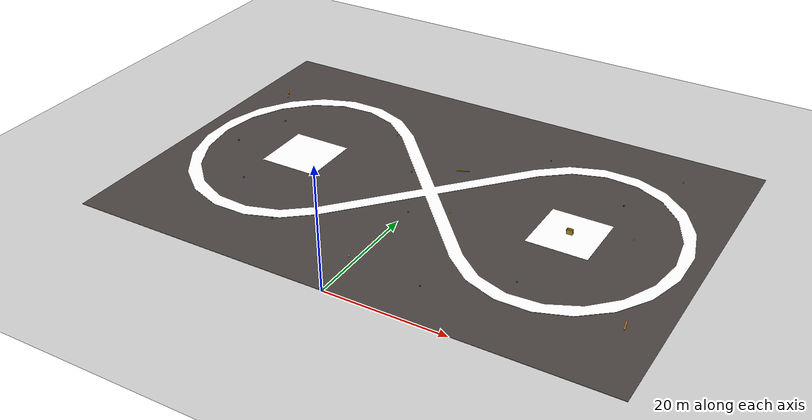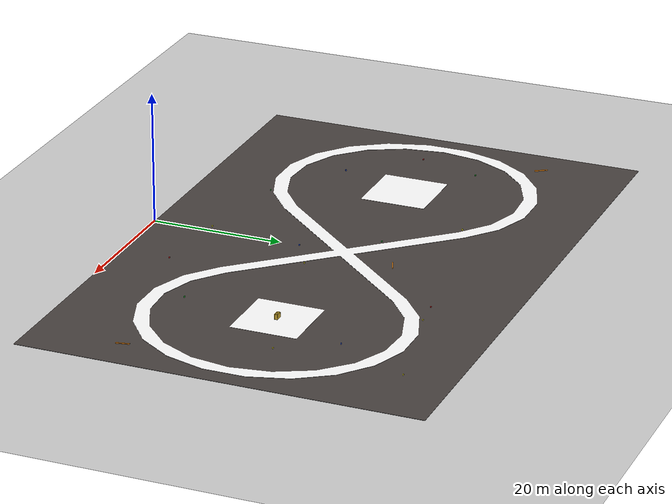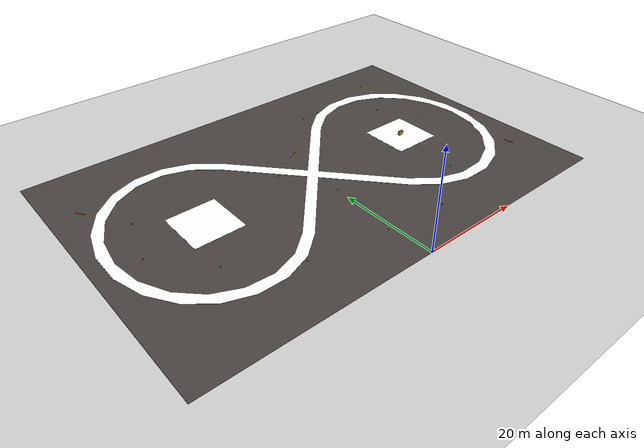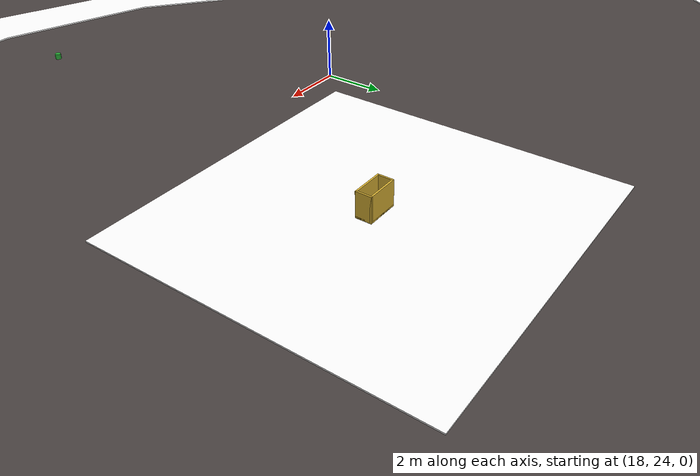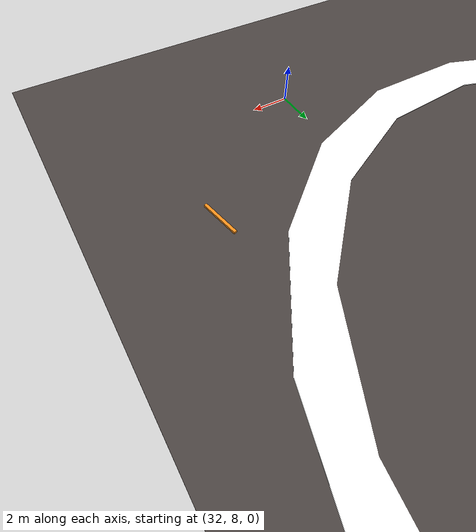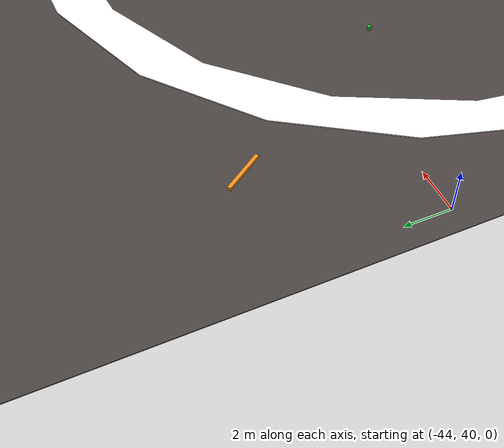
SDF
<?xml version="1.0" ?>
<sdf version="1.4">
	<world name="default">

		<!-- A global light source -->
		<include>
			<uri>model://sun</uri>
		</include>

		<!-- A ground plane -->
		<include>
			<uri>model://ground_plane</uri>
		</include>

		<!--Model Blender of Stage-->

		<model name="testbed_scene">
			<static>true</static>
            <pose>0 0 0 0 0 0.0</pose>
			<link name="test_scene">
				<visual name="visual">
					<geometry>
						<mesh><uri>model://stage.dae</uri></mesh>
					</geometry>
				</visual>
			</link>
		</model>

        <!-- Model of Static Objects -->
        <model name="static_object_1">
            <pose>22.52 15.2 0.05 0 0 0</pose>
            <include>
                <uri>model://green_object</uri>
            </include>
        </model>

        <model name="static_object_2">
            <pose>-33.77 37.7 0.05 0 0 0</pose>
            <include>
                <uri>model://green_object</uri>
            </include>
        </model>

        <model name="static_object_3">
            <pose>-16.82 11.22 0.05 0 0 0</pose>
            <include>
                <uri>model://green_object</uri>
            </include>
        </model>

        <model name="static_object_4">
            <pose>-5.61 33.71 0.05 0 0 0</pose>
            <include>
                <uri>model://green_object</uri>
            </include>
        </model>

        <model name="static_object_5">
            <pose>0.1 23.1 0.05 0 0 0</pose>
            <include>
                <uri>model://blue_object</uri>
            </include>
        </model>

        <model name="static_object_6">
            <pose>-28.18 18.78 0.05 0 0 0</pose>
            <include>
                <uri>model://blue_object</uri>
            </include>
        </model>

        <model name="static_object_7">
            <pose>28.13 41.23 0.05 0 0 0</pose>
            <include>
                <uri>model://blue_object</uri>
            </include>
        </model>

        <model name="static_object_8">
            <pose>-36.57 28.17 0.05 0 0 0</pose>
            <include>
                <uri>model://red_object</uri>
            </include>
        </model>

        <model name="static_object_9">
            <pose>11.26 7.6 0.05 0 0 0</pose>
            <include>
                <uri>model://red_object</uri>
            </include>
        </model>

        <model name="static_object_10">
            <pose>12.53 48.3 0.05 0 0 0</pose>
            <include>
                <uri>model://red_object</uri>
            </include>
        </model>

        <!-- BIG OBJECTS -->

        <model name="big_object_1">
            <pose>1.48 38.18 0.05 0 0 0.39270</pose>
            <include>
                <uri>model://orange_object</uri>
            </include>
        </model>

        <model name="big_object_2">
            <pose>39.30 13.70 0.05 0 0 1.76715</pose>
            <include>
                <uri>model://orange_object</uri>
            </include>
        </model>

        <model name="big_object_3">
            <pose>-39.35 46.25 0.1 0 0 2.15985</pose>
            <include>
                <uri>model://orange_object</uri>
            </include>
        </model>

         <!-- Model of Mobile Objects -->

        <model name="mobile_object_1">
            <pose>-1.24 8.7 0.05 0 0 0</pose>
            <include>
                <uri>model://yellow_object</uri>
            </include>
        </model>

        <model name="mobile_object_2">
            <pose>16.89 48.79 0.05 0 0 0</pose>
            <include>
                <uri>model://yellow_object</uri>
            </include>
        </model>

        <model name="mobile_object_3">
            <pose>5.64 26.24 0.05 0 0 0</pose>
            <include>
                <uri>model://yellow_object</uri>
            </include>
        </model>

        <model name="mobile_object_4">
            <pose>33.75 52.5 0.05 0 0 0</pose>
            <include>
                <uri>model://yellow_object</uri>
            </include>
        </model>

        <model name="mobile_object_5">
            <pose>32.9 33.19 0.05 0 0 0</pose>
            <include>
                <uri>model://yellow_object</uri>
            </include>
        </model>

        <model name="mobile_object_6">
            <pose>-14.0 43.0 0.05 0 0 0</pose>
            <include>
                <uri>model://yellow_object</uri>
            </include>
        </model>

        <!-- DROP BOX -->

        <model name="drop_box">
            <pose>24 30 0.05 0 0 1.571</pose>
            <include>
                <uri>model://dropping_box</uri>
            </include>
        </model>
	</world>
</sdf>

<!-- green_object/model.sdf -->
<sdf version="1.4">
<model name="green cylinder">
  <pose>0 0 0.08 0 0 0</pose>
    <link name="grab_here">
      <inertial>
        <mass>0.5</mass>
        <inertia>
          <ixx>0.083</ixx>
          <ixy>0.0</ixy>
          <ixz>0.0</ixz>
          <iyy>0.083</iyy>
          <iyz>0.0</iyz>
          <izz>0.083</izz>
        </inertia>
      </inertial>
      <collision name="collision">
        <geometry>
          <cylinder>
            <radius>0.10</radius>
            <length>0.2</length>
          </cylinder>
        </geometry>
      </collision>
      <visual name="visual">
        <geometry>
          <cylinder>
            <radius>0.10</radius>
            <length>0.2</length>
          </cylinder>
        </geometry>
        <material>
        	<script>
              <uri>file://media/materials/scripts/gazebo.material</uri>
              <name>Gazebo/Green</name>
            </script>
        </material>
      </visual>
    </link>
  </model>
</sdf>

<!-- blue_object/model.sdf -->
<sdf version="1.4">
<model name="blue cylinder">
  <pose>0 0 0.08 0 0 0</pose>
    <link name="grab_here">
      <inertial>
        <mass>0.5</mass>
        <inertia>
          <ixx>0.083</ixx>
          <ixy>0.0</ixy>
          <ixz>0.0</ixz>
          <iyy>0.083</iyy>
          <iyz>0.0</iyz>
          <izz>0.083</izz>
        </inertia>
      </inertial>
      <collision name="collision">
        <geometry>
          <cylinder>
            <radius>0.10</radius>
            <length>0.2</length>
          </cylinder>
        </geometry>
      </collision>
      <visual name="visual">
        <geometry>
          <cylinder>
            <radius>0.10</radius>
            <length>0.2</length>
          </cylinder>
        </geometry>
        <material>
        	<script>
              <uri>file://media/materials/scripts/gazebo.material</uri>
              <name>Gazebo/Blue</name>
            </script>
        </material>
      </visual>
    </link>
  </model>
</sdf>

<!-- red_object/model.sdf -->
<sdf version="1.4">
<model name="red cylinder">
  <pose>0 0 0.08 0 0 0</pose>
    <link name="grab_here">
      <inertial>
        <mass>0.5</mass>
        <inertia>
          <ixx>0.083</ixx>
          <ixy>0.0</ixy>
          <ixz>0.0</ixz>
          <iyy>0.083</iyy>
          <iyz>0.0</iyz>
          <izz>0.083</izz>
        </inertia>
      </inertial>
      <collision name="collision">
        <geometry>
          <cylinder>
            <radius>0.10</radius>
            <length>0.2</length>
          </cylinder>
        </geometry>
      </collision>
      <visual name="visual">
        <geometry>
          <cylinder>
            <radius>0.10</radius>
            <length>0.2</length>
          </cylinder>
        </geometry>
        <material>
        	<script>
              <uri>file://media/materials/scripts/gazebo.material</uri>
              <name>Gazebo/Red</name>
            </script>
        </material>
      </visual>
    </link>
  </model>
</sdf>

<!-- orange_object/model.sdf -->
<sdf version="1.4">
<model name="orange large object">
  <pose>0 0 0.04 0 0 0</pose>
    <link name="grab_here">
      <inertial>
        <mass>2</mass>
        <inertia>
          <ixx>0.083</ixx>
          <ixy>0.0</ixy>
          <ixz>0.0</ixz>
          <iyy>0.083</iyy>
          <iyz>0.0</iyz>
          <izz>0.083</izz>
        </inertia>
      </inertial>
      <collision name="collision">
        <geometry>
          <box>
            <size>2 0.2 0.2</size>
          </box>
        </geometry>
      </collision>
      <visual name="visual">
        <geometry>
          <box>
            <size>2 0.15 0.15</size>
          </box>
        </geometry>
        <material>
        	<script>
              <uri>file://media/materials/scripts/gazebo.material</uri>
              <name>Gazebo/Orange</name>
            </script>
        </material>
      </visual>
    </link>
  </model>
</sdf>

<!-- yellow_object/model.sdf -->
<sdf version="1.4">
<model name="yellow cylinder">
  <pose>0 0 0.08 0 0 0</pose>
    <link name="grab_here">
      <inertial>
        <mass>0.5</mass>
        <inertia>
          <ixx>0.083</ixx>
          <ixy>0.0</ixy>
          <ixz>0.0</ixz>
          <iyy>0.083</iyy>
          <iyz>0.0</iyz>
          <izz>0.083</izz>
        </inertia>
      </inertial>
      <collision name="collision">
        <geometry>
          <cylinder>
            <radius>0.10</radius>
            <length>0.2</length>
          </cylinder>
        </geometry>
      </collision>
      <visual name="visual">
        <geometry>
          <cylinder>
            <radius>0.10</radius>
            <length>0.2</length>
          </cylinder>
        </geometry>
        <material>
        	<script>
              <uri>file://media/materials/scripts/gazebo.material</uri>
              <name>Gazebo/Yellow</name>
            </script>
        </material>
      </visual>
    </link>
  </model>
</sdf>

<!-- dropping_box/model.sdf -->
<sdf version="1.4">
<model name="dropping box">
  <pose>0 0 0.08 0 0 0</pose>
  <static>true</static>
    <link name="base_face">
        <inertial>
         <mass>0.5</mass>
         <inertia>
            <ixx>0.083</ixx>
            <ixy>0.0</ixy>
            <ixz>0.0</ixz>
            <iyy>0.083</iyy>
            <iyz>0.0</iyz>
            <izz>0.083</izz>
         </inertia>
        </inertial>
        <collision name="collision">
            <geometry>
                <box>
                    <size>0.5 1 0.05</size>
                </box>
            </geometry>
        </collision>
        <visual name="visual">
            <geometry>
                <box>
                    <size>0.5 1 0.05</size>
                </box>
            </geometry>
            <material>
                <script>
                    <uri>file://media/materials/scripts/gazebo.material</uri>
                    <name>Gazebo/Gold</name>
                </script>
            </material>
        </visual>
    </link>

    <link name="front_face">
      <pose>0.225 0 0.375 0 0 0</pose>
      <inertial>
        <mass>0.5</mass>
        <inertia>
          <ixx>0.083</ixx>
          <ixy>0.0</ixy>
          <ixz>0.0</ixz>
          <iyy>0.083</iyy>
          <iyz>0.0</iyz>
          <izz>0.083</izz>
        </inertia>
      </inertial>
      <collision name="collision">
        <geometry>
        <box>
          <size>0.05 1 0.8</size>
        </box>
        </geometry>
      </collision>
      <visual name="visual">
        <geometry>
        <box>
          <size>0.05 1 0.8</size>
        </box>
        </geometry>
        <material>
            <script>
              <uri>file://media/materials/scripts/gazebo.material</uri>
              <name>Gazebo/Gold</name>
            </script>
        </material>
      </visual>
    </link>

    <link name="rear_face">
      <pose>-0.225 0 0.375 0 0 0</pose>
      <inertial>
        <mass>0.5</mass>
        <inertia>
          <ixx>0.083</ixx>
          <ixy>0.0</ixy>
          <ixz>0.0</ixz>
          <iyy>0.083</iyy>
          <iyz>0.0</iyz>
          <izz>0.083</izz>
        </inertia>
      </inertial>
      <collision name="collision">
        <geometry>
        <box>
          <size>0.05 1 0.8</size>
        </box>
        </geometry>
      </collision>
      <visual name="visual">
        <geometry>
        <box>
          <size>0.05 1 0.8</size>
        </box>
        </geometry>
        <material>
            <script>
              <uri>file://media/materials/scripts/gazebo.material</uri>
              <name>Gazebo/Gold</name>
            </script>
        </material>
      </visual>
    </link>

    <link name="right_face">
      <pose>0 0.475 0.375 0 0 0</pose>
      <inertial>
        <mass>0.5</mass>
        <inertia>
          <ixx>0.083</ixx>
          <ixy>0.0</ixy>
          <ixz>0.0</ixz>
          <iyy>0.083</iyy>
          <iyz>0.0</iyz>
          <izz>0.083</izz>
        </inertia>
      </inertial>
      <collision name="collision">
        <geometry>
        <box>
          <size>0.5 0.05 0.8</size>
        </box>
        </geometry>
      </collision>
      <visual name="visual">
        <geometry>
        <box>
          <size>0.5 0.05 0.8</size>
        </box>
        </geometry>
        <material>
            <script>
              <uri>file://media/materials/scripts/gazebo.material</uri>
              <name>Gazebo/Gold</name>
            </script>
        </material>
      </visual>
    </link>

    <link name="left_face">
      <pose>0 -0.475 0.375 0 0 0</pose>
      <inertial>
        <mass>0.5</mass>
        <inertia>
          <ixx>0.083</ixx>
          <ixy>0.0</ixy>
          <ixz>0.0</ixz>
          <iyy>0.083</iyy>
          <iyz>0.0</iyz>
          <izz>0.083</izz>
        </inertia>
      </inertial>
      <collision name="collision">
        <geometry>
        <box>
          <size>0.5 0.05 0.8</size>
        </box>
        </geometry>
      </collision>
      <visual name="visual">
        <geometry>
        <box>
          <size>0.5 0.05 0.8</size>
        </box>
        </geometry>
        <material>
            <script>
              <uri>file://media/materials/scripts/gazebo.material</uri>
              <name>Gazebo/Gold</name>
            </script>
        </material>
      </visual>
    </link>

    <joint name="base_front" type="revolute">
        <child>front_face</child>
        <parent>base_face</parent>
        <pose>1 1 1 0 0 0</pose>
        <axis>
          <xyz>1 1 1</xyz>
        </axis>
    </joint>

    <joint name="base_rear" type="revolute">
        <child>rear_face</child>
        <parent>base_face</parent>
        <pose>1 1 1 0 0 0</pose>
        <axis>
          <xyz>1 1 1</xyz>
        </axis>
    </joint>

    <joint name="base_right" type="revolute">
        <child>right_face</child>
        <parent>base_face</parent>
        <pose>1 1 1 0 0 0</pose>
        <axis>
          <xyz>1 1 1</xyz>
        </axis>
    </joint>

    <joint name="base_left" type="revolute">
        <child>left_face</child>
        <parent>base_face</parent>
        <pose>1 1 1 0 0 0</pose>
        <axis>
          <xyz>1 1 1</xyz>
        </axis>
    </joint>

  </model>
</sdf>
